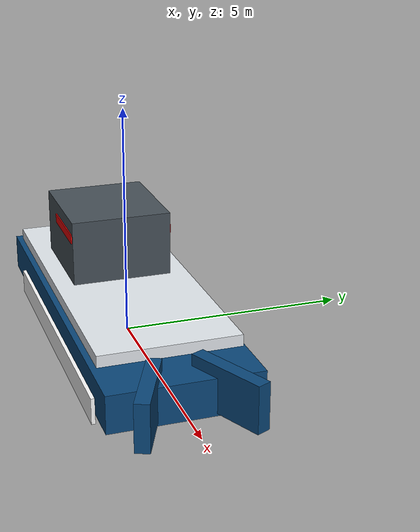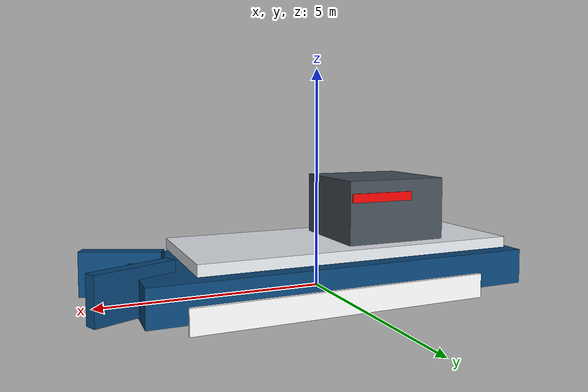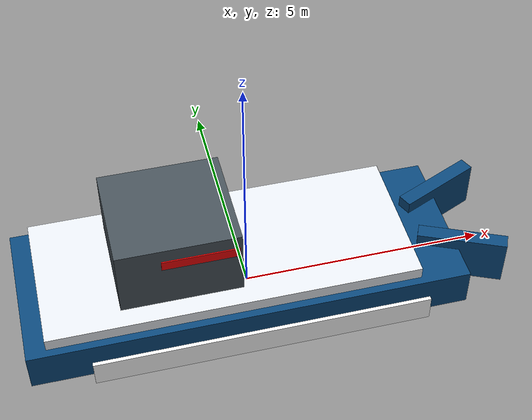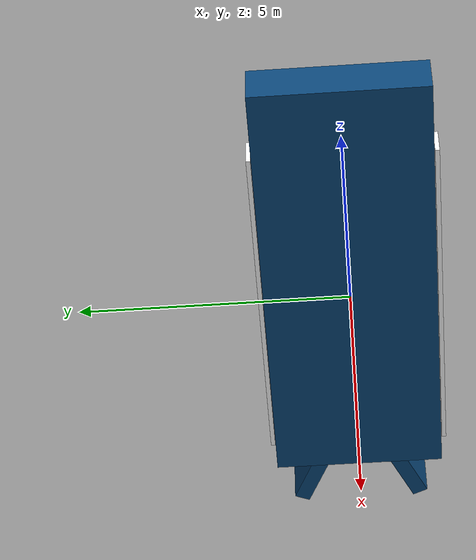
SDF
<?xml version="1.0"?>
<sdf version="1.10">
  <model name="sim332_enemy_ship">
    <include merge="true"><uri>model://scalable_capture_usv</uri></include>
    <link name="identity_shell">
      <visual name="black_deck"><pose>-0.25 0 0.62 0 0 0</pose><geometry><box><size>7.1 2.85 0.12</size></box></geometry><material><ambient>0.01 0.01 0.012 1</ambient><diffuse>0.025 0.025 0.03 1</diffuse></material></visual>
      <visual name="white_port"><pose>0 1.64 0.02 0 0 0</pose><geometry><box><size>6.8 0.08 0.55</size></box></geometry><material><ambient>0.8 0.8 0.8 1</ambient><diffuse>1 1 1 1</diffuse></material></visual>
      <visual name="white_starboard"><pose>0 -1.64 0.02 0 0 0</pose><geometry><box><size>6.8 0.08 0.55</size></box></geometry><material><ambient>0.8 0.8 0.8 1</ambient><diffuse>1 1 1 1</diffuse></material></visual>
      <visual name="hostile_identity_panel"><pose>-1.1 0 2.12 0 0 0</pose><geometry><box><size>1.5 2.25 0.20</size></box></geometry><material><ambient>0.55 0.01 0.01 1</ambient><diffuse>0.95 0.02 0.02 1</diffuse><emissive>0.12 0 0 1</emissive></material></visual>
    </link>
    <joint name="identity_joint" type="fixed"><parent>hull</parent><child>identity_shell</child></joint>
    <plugin filename="libRandomVesselMotion.so" name="gz::sim::systems::RandomVesselMotion">
      <command_topic>cmd_vel</command_topic>
      <seed>332</seed>
      <min_speed>0.45</min_speed><max_speed>0.90</max_speed>
      <min_cruise_seconds>5</min_cruise_seconds><max_cruise_seconds>11</max_cruise_seconds>
      <min_stop_seconds>0.5</min_stop_seconds><max_stop_seconds>1.5</max_stop_seconds>
      <!-- Keep the target continuously underway; randomness comes from its
           heading, turn duration and cruise speed rather than full stops. -->
      <stop_probability>0.0</stop_probability>
      <max_heading_change>1.75</max_heading_change><turn_rate>0.45</turn_rate>
      <operating_center_x>-330</operating_center_x>
      <operating_center_y>-355</operating_center_y>
      <operating_radius>65</operating_radius><boundary_margin>15</boundary_margin>
      <!-- This western patrol box prevents random legs from targeting the
           friendly vessel at (-150,-355), while preserving visible turns. -->
      <patrol_min_x>-385</patrol_min_x><patrol_max_x>-270</patrol_max_x>
      <patrol_min_y>-420</patrol_min_y><patrol_max_y>-290</patrol_max_y>
      <patrol_lookahead_seconds>10.0</patrol_lookahead_seconds>
      <patrol_boundary_margin>18</patrol_boundary_margin>
      <!-- Dynamic collision avoidance uses the same inverse-distance
           repulsion idea as the supplied GBSFLACS programs. -->
      <avoid_radius>30</avoid_radius>
      <avoid_heading_gain>2.0</avoid_heading_gain>
      <avoid_model>friendly_ship</avoid_model>
      <avoid_model>usv_01</avoid_model>
      <avoid_model>usv_02</avoid_model>
      <avoid_model>usv_03</avoid_model>
    </plugin>
  </model>
</sdf>

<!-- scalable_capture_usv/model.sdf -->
<sdf version="1.10">
  <model name="scalable_capture_usv">
    <pose>0 0 0.5 0 0 0</pose>
    <link name="hull">
      <gravity>false</gravity>
      <inertial>
        <mass>260</mass>
        <inertia>
          <ixx>180</ixx><iyy>920</iyy><izz>1050</izz>
        </inertia>
      </inertial>
      <collision name="hull_collision">
        <pose>0 0 0 0 0 0</pose>
        <geometry><box><size>9 3.4 1.2</size></box></geometry>
      </collision>
      <visual name="lower_hull">
        <pose>-0.2 0 -0.15 0 0 0</pose>
        <geometry><box><size>8.8 3.2 0.8</size></box></geometry>
        <material>
          <ambient>0.03 0.12 0.2 1</ambient>
          <diffuse>0.04 0.28 0.48 1</diffuse>
          <specular>0.3 0.4 0.5 1</specular>
        </material>
      </visual>
      <visual name="deck">
        <pose>-0.5 0 0.45 0 0 0</pose>
        <geometry><box><size>7.4 3.0 0.25</size></box></geometry>
        <material><ambient>0.75 0.78 0.8 1</ambient><diffuse>0.9 0.92 0.94 1</diffuse></material>
      </visual>
      <visual name="cabin">
        <pose>-1.5 0 1.25 0 0 0</pose>
        <geometry><box><size>2.4 2.2 1.5</size></box></geometry>
        <material><ambient>0.15 0.18 0.2 1</ambient><diffuse>0.28 0.32 0.35 1</diffuse></material>
      </visual>
      <visual name="bow_left">
        <pose>4.3 0.8 0 0 0 0.42</pose>
        <geometry><box><size>1.8 0.3 1.0</size></box></geometry>
        <material><ambient>0.03 0.12 0.2 1</ambient><diffuse>0.04 0.28 0.48 1</diffuse></material>
      </visual>
      <visual name="bow_right">
        <pose>4.3 -0.8 0 0 0 -0.42</pose>
        <geometry><box><size>1.8 0.3 1.0</size></box></geometry>
        <material><ambient>0.03 0.12 0.2 1</ambient><diffuse>0.04 0.28 0.48 1</diffuse></material>
      </visual>
    </link>
    <plugin filename="libBoatWaveFollower.so" name="gz::sim::systems::BoatWaveFollower">
      <mean_z>0.68</mean_z>
      <heave_amplitude>0.06</heave_amplitude>
      <roll_amplitude>0.025</roll_amplitude>
      <pitch_amplitude>0.02</pitch_amplitude>
      <primary_frequency>0.9</primary_frequency>
      <secondary_frequency>1.35</secondary_frequency>
      <wave_number_x>0.24</wave_number_x>
      <wave_number_y>0.17</wave_number_y>
      <velocity_topic>cmd_vel</velocity_topic>
    </plugin>
  </model>
</sdf>
